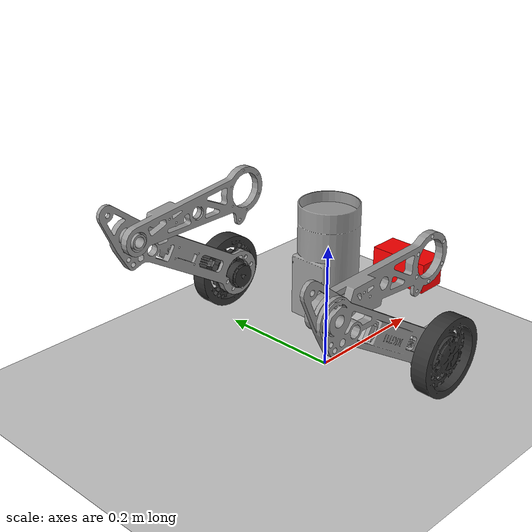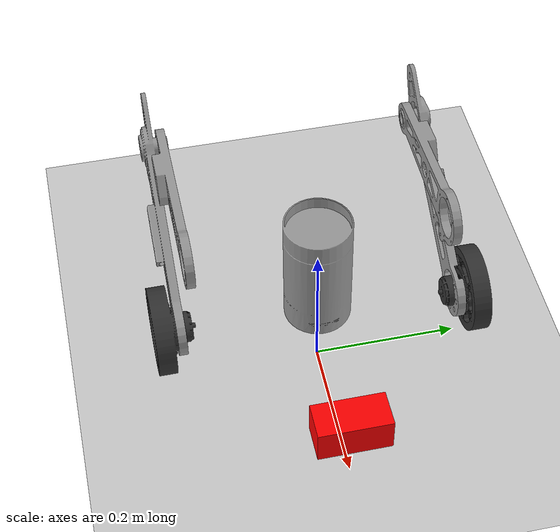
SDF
<?xml version="1.0" ?>
<sdf version="1.8">
    <world name="car_world">
        <physics name="fast" type="ignored">
          <real_time_factor>1</real_time_factor>
        </physics>
        <plugin
            filename="libignition-gazebo-imu-system.so"
            name="ignition::gazebo::systems::Imu">
        </plugin>
        <plugin
            filename="libignition-gazebo-sensors-system.so"
            name="ignition::gazebo::systems::Sensors">
            <render_engine>ogre2</render_engine>
        </plugin>
        <plugin
          filename="gz-sim-physics-system"
          name="gz::sim::systems::Physics">
        </plugin>
        <plugin
          filename="gz-sim-user-commands-system"
          name="gz::sim::systems::UserCommands">
        </plugin>
        <plugin
          filename="gz-sim-scene-broadcaster-system"
          name="gz::sim::systems::SceneBroadcaster">
        </plugin>
        <plugin
          filename="gz-sim-contact-system"
          name="gz::sim::systems::Contact">
        </plugin>

        <light type="directional" name="sun">
            <cast_shadows>true</cast_shadows>
            <pose>0 0 10 0 0 0</pose>
            <diffuse>0.8 0.8 0.8 1</diffuse>
            <specular>0.2 0.2 0.2 1</specular>
            <attenuation>
                <range>1000</range>
                <constant>0.9</constant>
                <linear>0.01</linear>
                <quadratic>0.001</quadratic>
            </attenuation>
            <direction>-0.5 0.1 -0.9</direction>
        </light>

        <model name="plane">
          <static>1</static>
          <!-- 30 degree incline -->
          <pose>0 0.0 0.0 0.0 0 0</pose>
          <link name="plane_link">
            <collision name="collision">
              <geometry>
                <plane>
                  <normal>0 0 1</normal>
                  <size>100 100</size>
                </plane>
              </geometry>
              <surface>
                <friction>
                  <ode>
                    <mu>0.9</mu>
                  </ode>
                </friction>
              </surface>
            </collision>
            <visual name="visual">
              <geometry>
                <plane>
                  <normal>0 0 1</normal>
                  <size>100 100</size>
                </plane>
              </geometry>
              <material>
                  <ambient>0.8 0.8 0.8 1</ambient>
                  <diffuse>0.8 0.8 0.8 1</diffuse>
                  <specular>0.8 0.8 0.8 1</specular>
                </material>
            </visual>
          </link>
        </model>

        <model name='bipedal'>
        <pose>0 0 0.1 0 0 0</pose>
          <link name='base_link'>
            <inertial>
              <pose>-0.013974 0.00114 0.15072 0 -0 0</pose>
              <mass>19.0171</mass>
              <inertia>
                <ixx>0.29</ixx>
                <ixy>0.0</ixy>
                <ixz>0.0</ixz>
                <iyy>0.52</iyy>
                <iyz>0.0</iyz>
                <izz>0.45</izz>
              </inertia>
            </inertial>
            <collision name='base_link_collision'>
              <pose>-0.013974 0.00114 0.16072 0 0 0</pose>
              <geometry>
                <box>
                  <size>0.409999 0.246000 0.308000</size>
                </box>
              </geometry>
            </collision>
            <visual name='base_link_visual'>
              <pose>0 0 0 0 -0 0</pose>
              <geometry>
                <mesh>
                  <scale>1 1 1</scale>
                  <uri>model://meshes/base_link.STL</uri>
                </mesh>
              </geometry>
              <material>
                <ambient>0.3 0.3 0.3 1</ambient>
                <diffuse>0.6 0.6 0.6 1</diffuse>
                <specular>0.2 0.2 0.2 1</specular>
              </material>
            </visual>

            <sensor name="imu_sensor" type="imu">
              <pose>0 0 0 0 0 0</pose>
              <always_on>1</always_on>
              <update_rate>100</update_rate>
              <visualize>true</visualize>
              <topic>/model/bipedal/imu</topic>
              <imu>
                <angular_velocity>
                  <x>
                    <noise type="gaussian">
                      <mean>0.0</mean>
                      <stddev>2e-4</stddev>
                    </noise>
                  </x>
                  <y>
                    <noise type="gaussian">
                      <mean>0.0</mean>
                      <stddev>2e-4</stddev>
                    </noise>
                  </y>
                  <z>
                    <noise type="gaussian">
                      <mean>0.0</mean>
                      <stddev>2e-4</stddev>
                    </noise>
                  </z>
                </angular_velocity>
                <linear_acceleration>
                  <x>
                    <noise type="gaussian">
                      <mean>0.0</mean>
                      <stddev>1.7e-2</stddev>
                    </noise>
                  </x>
                  <y>
                    <noise type="gaussian">
                      <mean>0.0</mean>
                      <stddev>1.7e-2</stddev>
                    </noise>
                  </y>
                  <z>
                    <noise type="gaussian">
                      <mean>0.0</mean>
                      <stddev>1.7e-2</stddev>
                    </noise>
                  </z>
                </linear_acceleration>
              </imu>
            </sensor>
          </link>

          <joint name='counterweight_joint' type='fixed'>
            <!-- 位置：X=0.2(靠前), Y=0(居中), Z=0.32(放在顶部) -->
            <pose relative_to='base_link'>0.2 0 0 0 0 0</pose>
            <parent>base_link</parent>
            <child>counterweight_link</child>
          </joint>

          <link name='counterweight_link'>
            <pose relative_to='counterweight_joint'>0 0 0 0 0 0</pose>
            <inertial>
              <mass>3</mass> <!-- 配重质量：2kg，可根据需要调整 -->
              <inertia>
                <!-- 简单的盒子惯量估算 -->
                <ixx>0.001</ixx>
                <ixy>0</ixy>
                <ixz>0</ixz>
                <iyy>0.001</iyy>
                <iyz>0</iyz>
                <izz>0.001</izz>
              </inertia>
            </inertial>
            <collision name='counterweight_collision'>
              <geometry>
                <box>
                  <size>0.05 0.1 0.05</size> <!-- 尺寸：5cm x 10cm x 5cm -->
                </box>
              </geometry>
            </collision>
            <visual name='counterweight_visual'>
              <geometry>
                <box>
                  <size>0.05 0.1 0.05</size>
                </box>
              </geometry>
              <material>
                <ambient>1 0 0 1</ambient> <!-- 红色，方便观察 -->
                <diffuse>1 0 0 1</diffuse>
                <specular>0.5 0.5 0.5 1</specular>
              </material>
            </visual>
          </link>
          <joint name='Lbig_joint' type='revolute'>
            <pose relative_to='base_link'>-0.000178 0.167799 0.141513 0 0 0</pose>
            <parent>base_link</parent>
            <child>Lbig_Link</child>
            <axis>
              <xyz>0 1 0</xyz>
              <limit>
                <lower>-1.3</lower>
                <upper>0.8</upper>
                <effort>100</effort>
                <velocity>10</velocity>
              </limit>
              <dynamics>
                <spring_reference>0</spring_reference>
                <spring_stiffness>0</spring_stiffness>
              </dynamics>
            </axis>
          </joint>
          <link name='Lbig_Link'>
            <pose relative_to='Lbig_joint'>0 0 0 0 -0 0</pose>
            <inertial>
              <pose>-0.09915 0.010957 -0.007039 0 -0 0</pose>
              <mass>0.279663</mass>
              <inertia>
                <ixx>9.5839e-05</ixx>
                <ixy>1.88655e-06</ixy>
                <ixz>-6.77181e-05</ixz>
                <iyy>0.00152349</iyy>
                <iyz>-5.34323e-07</iyz>
                <izz>0.00143434</izz>
              </inertia>
            </inertial>
            <collision name='Lbig_Link_collision'>
              <pose>-0.08658 0.006000 -0.008561  0 0 0</pose>
              <geometry>
                <box>
                  <size>0.274204 0.014000 0.07046</size>
                </box>
              </geometry>
            </collision>
            <visual name='Lbig_Link_visual'>
              <pose>0 0 0 0 -0 0</pose>
              <geometry>
                <mesh>
                  <scale>1 1 1</scale>
                  <uri>model://meshes/Lbig_Link.STL</uri>
                </mesh>
              </geometry>
              <material>
                <ambient>0.3 0.3 0.3 1</ambient>
                <diffuse>0.6 0.6 0.6 1</diffuse>
                <specular>0.2 0.2 0.2 1</specular>
              </material>
            </visual>
          </link>
          <joint name='Lsmall_joint' type='fixed'>
            <pose relative_to='Lbig_Link'>-0.214311 0.021 -0.017197 0 0 0</pose>
            <parent>Lbig_Link</parent>
            <child>Lsmall_Link</child>
            <axis>
              <xyz>0 1 0</xyz>
              <limit>
                <lower>-1.9</lower>
                <upper>0.85</upper>
                <effort>100</effort>
                <velocity>10</velocity>
              </limit>
              <dynamics>
                <spring_reference>0</spring_reference>
                <spring_stiffness>0</spring_stiffness>
              </dynamics>
            </axis>
          </joint>
          <link name='Lsmall_Link'>
            <pose relative_to='Lsmall_joint'>0 0 0 0 -0 0</pose>
            <inertial>
              <pose>0.079592 0.007638 -0.04948 0 -0 0</pose>
              <mass>0.251916</mass>
              <inertia>
                <ixx>0.000573834</ixx>
                <ixy>-1.08614e-06</ixy>
                <ixz>0.000768878</ixz>
                <iyy>0.00188519</iyy>
                <iyz>1.54955e-06</iyz>
                <izz>0.00132472</izz>
              </inertia>
            </inertial>
            <collision name='Lsmall_Link_collision'>
              <pose>0.085496 0.002000 -0.0466945  -2.125 -0.02748 -1.579</pose>
              <geometry>
                <box>
                  <size>0.014000 0.067046 0.254204</size>
                </box>
              </geometry>
            </collision>
            <visual name='Lsmall_Link_visual'>
              <pose>0 0 0 0 -0 0</pose>
              <geometry>
                <mesh>
                  <scale>1 1 1</scale>
                  <uri>model://meshes/Lsmall_Link.STL</uri>
                </mesh>
              </geometry>
              <material>
                <ambient>0.3 0.3 0.3 1</ambient>
                <diffuse>0.6 0.6 0.6 1</diffuse>
                <specular>0.2 0.2 0.2 1</specular>
              </material>
            </visual>
          </link>
          <joint name='Lwheel_joint' type='revolute'>
            <pose relative_to='Lsmall_Link'>0.214826 0.02955 -0.135487 0 -0 0</pose>
            <parent>Lsmall_Link</parent>
            <child>Lwheel_Link</child>
            <axis>
              <xyz>0 1 0</xyz>
              <limit>
                <lower>-1.79769e+308</lower>
                <upper>1.79769e+308</upper>
                <effort>50</effort>
                <velocity>10</velocity>
              </limit>
              <dynamics>
                <spring_reference>0</spring_reference>
                <spring_stiffness>0</spring_stiffness>
              </dynamics>
            </axis>
          </joint>
          <link name='Lwheel_Link'>
            <pose relative_to='Lwheel_joint'>0 0 0 0 -0 0</pose>
            <inertial>
              <pose>5.1e-05 -0.003049 -9.3e-05 0 -0 0</pose>
              <mass>0.304045</mass>
              <inertia>
                <ixx>0.000308809</ixx>
                <ixy>1.34202e-07</ixy>
                <ixz>-3.59301e-07</ixz>
                <iyy>0.000569585</iyy>
                <iyz>-2.0098e-07</iyz>
                <izz>0.000309114</izz>
              </inertia>
            </inertial>
            <collision name='Lwheel_Link_collision'>
              <pose>0 0 0 1.5708 0 0</pose>
              <geometry>
                <cylinder>
                  <radius>0.065</radius>
                  <length>0.0158</length>
                </cylinder>
              </geometry>
              <surface>
                  <friction>
                    <ode>
                      <mu>0.9</mu>
                    </ode>
                  </friction>
              </surface>
            </collision>
            <visual name='Lwheel_Link_visual'>
              <pose>0 0 0 0 -0 0</pose>
              <geometry>
                <mesh>
                  <scale>1 1 1</scale>
                  <uri>model://meshes/Lwheel_Link.STL</uri>
                </mesh>
              </geometry>
              <material>
                <ambient>0.2 0.2 0.2 1</ambient>
                <diffuse>0.2 0.2 0.2 1</diffuse>
                <specular>0.5 0.5 0.5 1</specular>
              </material>
            </visual>
          </link>
          <joint name='Rbig_joint' type='revolute'>
            <pose relative_to='base_link'>-0.000178 -0.163201 0.141513 0 0 0</pose>
            <parent>base_link</parent>
            <child>Rbig_Link</child>
            <axis>
              <xyz>0 -1 0</xyz>
              <limit>
                <lower>-0.8</lower>
                <upper>1.3</upper>
                <effort>100</effort>
                <velocity>10</velocity>
              </limit>
              <dynamics>
                <spring_reference>0</spring_reference>
                <spring_stiffness>0</spring_stiffness>
              </dynamics>
            </axis>
          </joint>
          <link name='Rbig_Link'>
            <pose relative_to='Rbig_joint'>0 0 0 0 -0 0</pose>
            <inertial>
              <pose>-0.098958 -0.010875 0.001169 0 -0 0</pose>
              <mass>0.273515</mass>
              <inertia>
                <ixx>9.28253e-05</ixx>
                <ixy>-1.82687e-06</ixy>
                <ixz>4.2679e-05</ixz>
                <iyy>0.00151102</iyy>
                <iyz>6.82543e-07</iyz>
                <izz>0.00142474</izz>
              </inertia>
            </inertial>
            <collision name='Rbig_Link_collision'>
              <pose>-0.086023 -0.006000 -0.007671 0 -0 0</pose>
              <geometry>
                <box>
                  <size>0.274449 0.014000 0.07734</size>
                </box>
              </geometry>
            </collision>
            <visual name='Rbig_Link_visual'>
              <pose>0 0 0 0 -0 0</pose>
              <geometry>
                <mesh>
                  <scale>1 1 1</scale>
                  <uri>model://meshes/Rbig_Link.STL</uri>
                </mesh>
              </geometry>
              <material>
                <ambient>0.3 0.3 0.3 1</ambient>
                <diffuse>0.6 0.6 0.6 1</diffuse>
                <specular>0.2 0.2 0.2 1</specular>
              </material>
            </visual>
          </link>
          <joint name='Rsmall_joint' type='fixed'>
            <pose relative_to='Rbig_Link'>-0.214999 -0.021 0.000489 0 0 0</pose>
            <parent>Rbig_Link</parent>
            <child>Rsmall_Link</child>
            <axis>
              <xyz>0 -1 0</xyz>
              <limit>
                <lower>-0.85</lower>
                <upper>1.9</upper>
                <effort>100</effort>
                <velocity>10</velocity>
              </limit>
              <dynamics>
                <spring_reference>0</spring_reference>
                <spring_stiffness>0</spring_stiffness>
              </dynamics>
            </axis>
          </joint>
          <link name='Rsmall_Link'>
            <pose relative_to='Rsmall_joint'>0 0 0 0 0 0</pose>
            <inertial>
              <pose>0.088576 -0.007215 -0.055792 0 -0 0</pose>
              <mass>0.251916</mass>
              <inertia>
                <ixx>0.000569012</ixx>
                <ixy>1.18974e-06</ixy>
                <ixz>0.000768613</ixz>
                <iyy>0.00187798</iyy>
                <iyz>-1.26065e-06</iyz>
                <izz>0.00132225</izz>
              </inertia>
            </inertial>
            <collision name='Rsmall_Link_collision'>
              <pose>0.084541 -0.002000 -0.048222  -2.139 -0.01744 -1.551</pose>
              <geometry>
                <box>
                  <size>0.014000 0.06734 0.254449</size>
                </box>
              </geometry>
            </collision>
            <visual name='Rsmall_Link_visual'>
              <pose>0 0 0 0 -0 0</pose>
              <geometry>
                <mesh>
                  <scale>1 1 1</scale>
                  <uri>model://meshes/Rsmall_Link.STL</uri>
                </mesh>
              </geometry>
              <material>
                <ambient>0.3 0.3 0.3 1</ambient>
                <diffuse>0.6 0.6 0.6 1</diffuse>
                <specular>0.2 0.2 0.2 1</specular>
              </material>
            </visual>
          </link>

          <joint name='Rwheel_joint' type='revolute'>
            <pose relative_to='Rsmall_Link'>0.214846 -0.02955 -0.135489 0 -0 0</pose>
            <parent>Rsmall_Link</parent>
            <child>Rwheel_Link</child>
            <axis>
              <xyz expressed_in='__model__'>0 -1 0</xyz>
              <limit>
                <lower>-1.79769e+308</lower>
                <upper>1.79769e+308</upper>
                <effort>50</effort>
                <velocity>10</velocity>
              </limit>
              <dynamics>
                <spring_reference>0</spring_reference>
                <spring_stiffness>0</spring_stiffness>
              </dynamics>
            </axis>
          </joint>

          <link name='Rwheel_Link'>
            <pose relative_to='Rwheel_joint'>0 0 0 0 -0 0</pose>
            <inertial>
              <pose>0.000106 0.003049 -4e-06 0 -0 0</pose>
              <mass>0.304045</mass>
              <inertia>
                <ixx>0.00030934</ixx>
                <ixy>-2.39606e-07</ixy>
                <ixz>-9.77394e-08</ixz>
                <iyy>0.000569585</iyy>
                <iyz>3.14965e-08</iyz>
                <izz>0.000308584</izz>
              </inertia>
            </inertial>
            <collision name='Rwheel_Link_collision'>
              <pose>0 0 0 1.5708 0 0</pose>
              <geometry>
                <cylinder>
                  <radius>0.065</radius>
                  <length>0.0158</length>
                </cylinder>
              </geometry>
              <surface>
                <friction>
                  <ode>
                    <mu>0.9</mu>
                  </ode>
                </friction>
              </surface>
            </collision>
            <visual name='Rwheel_Link_visual'>
              <pose>0 0 0 0 -0 0</pose>
              <geometry>
                <mesh>
                  <scale>1 1 1</scale>
                  <uri>model://meshes/Rwheel_Link.STL</uri>
                </mesh>
              </geometry>
              <material>
                <ambient>0.2 0.2 0.2 1</ambient>
                <diffuse>0.2 0.2 0.2 1</diffuse>
                <specular>0.5 0.5 0.5 1</specular>
              </material>
            </visual>
          </link>

          <!-- Add joint controller plugin for all joint -->
          <plugin
            filename="ignition-gazebo-apply-joint-force-system"
            name="gz::sim::systems::ApplyJointForce">
            <joint_name>Rwheel_joint</joint_name>
          </plugin>

          <plugin
            filename="ignition-gazebo-apply-joint-force-system"
            name="gz::sim::systems::ApplyJointForce">
            <joint_name>Lwheel_joint</joint_name>
          </plugin>

          <plugin
            filename="ignition-gazebo-apply-joint-force-system"
            name="gz::sim::systems::ApplyJointForce">
            <joint_name>Rbig_joint</joint_name>
          </plugin>

          <plugin
            filename="ignition-gazebo-apply-joint-force-system"
            name="gz::sim::systems::ApplyJointForce">
            <joint_name>Lbig_joint</joint_name>
          </plugin>

          <plugin
            filename="ignition-gazebo-apply-joint-force-system"
            name="gz::sim::systems::ApplyJointForce">
            <joint_name>Rsmall_joint</joint_name>
          </plugin>

          <plugin
            filename="ignition-gazebo-apply-joint-force-system"
            name="gz::sim::systems::ApplyJointForce">
            <joint_name>Lsmall_joint</joint_name>
          </plugin>

          <!-- motor feedback -->
          <plugin
            filename="ignition-gazebo-joint-state-publisher-system"
            name="gz::sim::systems::JointStatePublisher">
          </plugin>

        </model>
    </world>
</sdf>
